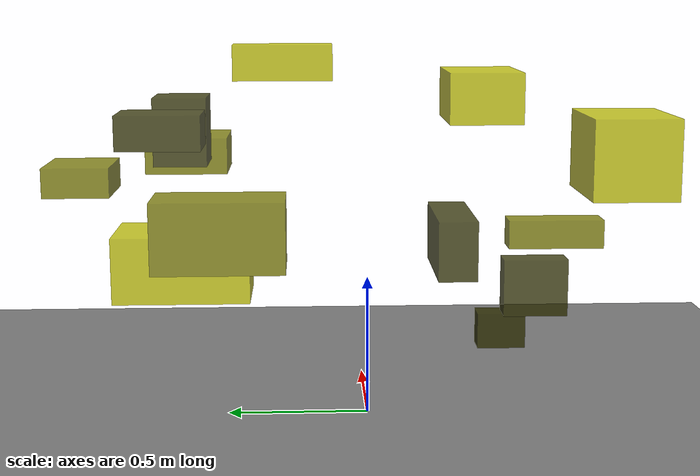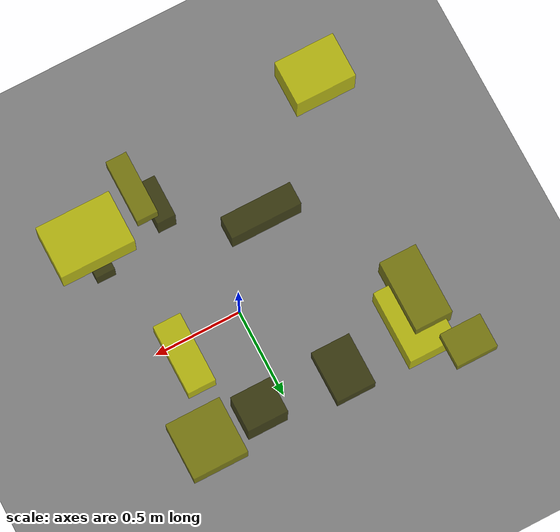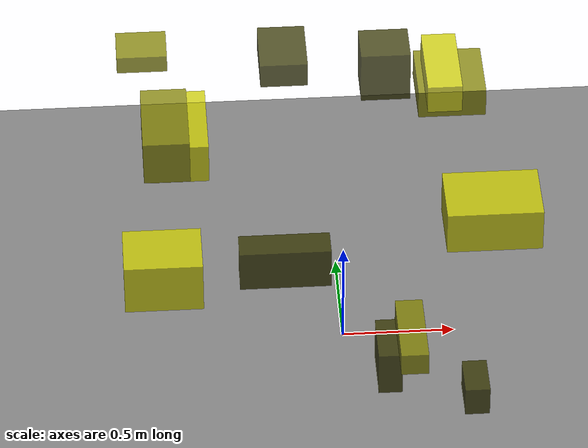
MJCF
<?xml version="1.0"?>
<mujoco model="obstacle_scene">
  <compiler angle="radian" coordinate="local"/>
  <option timestep="0.001" gravity="0 0 -9.81"/>

  <asset>
    <material name="obstacle_mat" rgba="0.8 0.8 0.0 0.8"/>
    <material name="ground_mat" rgba="0.5 0.5 0.5 1"/>
  </asset>

  <worldbody>
    <!-- Ground plane -->
    <geom name="ground" type="plane" size="3 3 0.1" material="ground_mat"/>

    <!-- Obstacles -->
    <body name="obstacle_0" pos="0.228006 0.666849 1.007310">
      <geom name="obs_0" type="box" size="0.109537 0.095957 0.123238" rgba="0.2 0.2 0.0 0.8"/>
    </body>
    <body name="obstacle_1" pos="-0.762871 0.469714 0.811316">
      <geom name="obs_1" type="box" size="0.102533 0.195348 0.106255" rgba="0.5 0.5 0.0 0.8"/>
    </body>
    <body name="obstacle_2" pos="0.448268 0.301730 1.238675">
      <geom name="obs_2" type="box" size="0.074617 0.187717 0.067145" rgba="0.8 0.8 0.0 0.8"/>
    </body>
    <body name="obstacle_3" pos="0.153017 -0.627256 0.427688">
      <geom name="obs_3" type="box" size="0.051454 0.118095 0.105201" rgba="0.2 0.2 0.0 0.8"/>
    </body>
    <body name="obstacle_4" pos="0.522361 0.669059 0.888457">
      <geom name="obs_4" type="box" size="0.150422 0.154534 0.067866" rgba="0.5 0.5 0.0 0.8"/>
    </body>
    <body name="obstacle_5" pos="-0.704988 0.579400 0.713007">
      <geom name="obs_5" type="box" size="0.131725 0.200036 0.097674" rgba="0.8 0.8 0.0 0.8"/>
    </body>
    <body name="obstacle_6" pos="-0.273651 -0.271172 0.686407">
      <geom name="obs_6" type="box" size="0.198354 0.063369 0.097832" rgba="0.2 0.2 0.0 0.8"/>
    </body>
    <body name="obstacle_7" pos="0.243433 -0.715546 0.612078">
      <geom name="obs_7" type="box" size="0.058531 0.177537 0.053032" rgba="0.5 0.5 0.0 0.8"/>
    </body>
    <body name="obstacle_8" pos="0.599576 -0.477824 1.098557">
      <geom name="obs_8" type="box" size="0.203329 0.142814 0.099289" rgba="0.8 0.8 0.0 0.8"/>
    </body>
    <body name="obstacle_9" pos="-0.225963 0.694740 1.055133">
      <geom name="obs_9" type="box" size="0.105101 0.139583 0.058431" rgba="0.2 0.2 0.0 0.8"/>
    </body>
    <body name="obstacle_10" pos="-0.851715 0.848207 0.991809">
      <geom name="obs_10" type="box" size="0.112341 0.092473 0.041675" rgba="0.5 0.5 0.0 0.8"/>
    </body>
    <body name="obstacle_11" pos="-0.810649 -0.710133 1.046129">
      <geom name="obs_11" type="box" size="0.164958 0.123592 0.116697" rgba="0.8 0.8 0.0 0.8"/>
    </body>
    <body name="obstacle_12" pos="0.543053 -0.561660 0.160750">
      <geom name="obs_12" type="box" size="0.053636 0.095306 0.070245" rgba="0.2 0.2 0.0 0.8"/>
    </body>
  </worldbody>
</mujoco>
